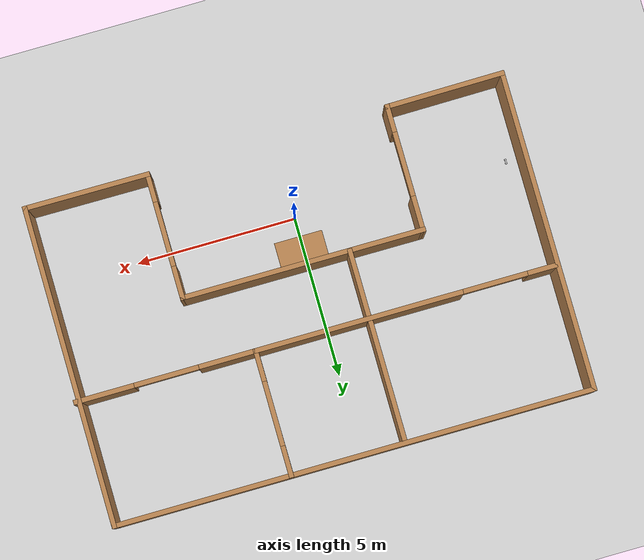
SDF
<sdf version="1.7">
 <world name="default">
  <light name="sun" type="directional">
   <pose>0 0 10 0 -0 0</pose>
   <diffuse>0.8 0.8 0.8 1</diffuse>
   <specular>0.2 0.2 0.2 1</specular>
   <attenuation>
    <range>1000</range>
    <constant>0.9</constant>
    <linear>0.01</linear>
    <quadratic>0.001</quadratic>
   </attenuation>
   <direction>-0.5 0.1 -0.9</direction>
   <spot><inner_angle>0</inner_angle><outer_angle>0</outer_angle><falloff>0</falloff></spot>
  </light>
  <model name="ground_plane">
   <static>1</static>
   <link name="link">
    <collision name="collision">
     <geometry><plane><normal>0 0 1</normal><size>100 100</size></plane></geometry>
     <surface><friction><ode><mu>100</mu><mu2>50</mu2></ode></friction></surface>
    </collision>
    <visual name="visual">
     <cast_shadows>0</cast_shadows>
     <geometry><plane><normal>0 0 1</normal><size>100 100</size></plane></geometry>
     <material>
      <script><uri>file://media/materials/scripts/gazebo.material</uri><name>Gazebo/Grey</name></script>
     </material>
    </visual>
   </link>
  </model>
  <gravity>0 0 -9.8</gravity>
  <magnetic_field>6e-06 2.3e-05 -4.2e-05</magnetic_field>
  <atmosphere type="adiabatic"/>
  <physics type="ode">
   <max_step_size>0.001</max_step_size>
   <real_time_factor>1</real_time_factor>
   <real_time_update_rate>1000</real_time_update_rate>
  </physics>
  <scene><ambient>0.4 0.4 0.4 1</ambient><background>0.7 0.7 0.7 1</background><shadows>1</shadows></scene>
  <spherical_coordinates>
   <surface_model>EARTH_WGS84</surface_model>
   <latitude_deg>0</latitude_deg>
   <longitude_deg>0</longitude_deg>
   <elevation>0</elevation>
   <heading_deg>0</heading_deg>
  </spherical_coordinates>
  <model name="tiago_5house">
   <pose>0.343172 2.62592 0 0 -0 0</pose>
   <link name="Wall_12">
    <pose>0.047716 1.06548 0 0 -0 0</pose>
    <visual name="Wall_12_Visual_0">
     <pose>-7.03783 0 1.25 0 -0 0</pose>
     <geometry><box><size>0.924333 0.15 2.5</size></box></geometry>
     <material>
      <script><uri>file://media/materials/scripts/gazebo.material</uri><name>Gazebo/Wood</name></script>
      <ambient>1 1 1 1</ambient>
     </material>
     <meta><layer>0</layer></meta>
    </visual>
    <collision name="Wall_12_Collision_0">
     <geometry><box><size>0.924333 0.15 2.5</size></box></geometry>
     <pose>-7.03783 0 1.25 0 -0 0</pose>
    </collision>
    <visual name="Wall_12_Visual_1">
     <pose>-0.474768 0 1.25 0 -0 0</pose>
     <geometry><box><size>8.2018 0.15 2.5</size></box></geometry>
     <material>
      <script><uri>file://media/materials/scripts/gazebo.material</uri><name>Gazebo/Wood</name></script>
      <ambient>1 1 1 1</ambient>
     </material>
     <meta><layer>0</layer></meta>
    </visual>
    <collision name="Wall_12_Collision_1">
     <geometry><box><size>8.2018 0.15 2.5</size></box></geometry>
     <pose>-0.474768 0 1.25 0 -0 0</pose>
    </collision>
    <visual name="Wall_12_Visual_2">
     <pose>6.56307 0 1.25 0 -0 0</pose>
     <geometry><box><size>1.87387 0.15 2.5</size></box></geometry>
     <material>
      <script><uri>file://media/materials/scripts/gazebo.material</uri><name>Gazebo/Wood</name></script>
      <ambient>1 1 1 1</ambient>
     </material>
     <meta><layer>0</layer></meta>
    </visual>
    <collision name="Wall_12_Collision_2">
     <geometry><box><size>1.87387 0.15 2.5</size></box></geometry>
     <pose>6.56307 0 1.25 0 -0 0</pose>
    </collision>
    <visual name="Wall_12_Visual_3">
     <pose>-5.57567 0 2.25 0 -0 0</pose>
     <geometry><box><size>2 0.15 0.5</size></box></geometry>
     <material>
      <script><uri>file://media/materials/scripts/gazebo.material</uri><name>Gazebo/Wood</name></script>
      <ambient>1 1 1 1</ambient>
     </material>
     <meta><layer>0</layer></meta>
    </visual>
    <collision name="Wall_12_Collision_3">
     <geometry><box><size>2 0.15 0.5</size></box></geometry>
     <pose>-5.57567 0 2.25 0 -0 0</pose>
    </collision>
    <visual name="Wall_12_Visual_4">
     <pose>4.62613 0 2.25 0 -0 0</pose>
     <geometry><box><size>2 0.15 0.5</size></box></geometry>
     <material>
      <script><uri>file://media/materials/scripts/gazebo.material</uri><name>Gazebo/Wood</name></script>
      <ambient>1 1 1 1</ambient>
     </material>
     <meta><layer>0</layer></meta>
    </visual>
    <collision name="Wall_12_Collision_4">
     <geometry><box><size>2 0.15 0.5</size></box></geometry>
     <pose>4.62613 0 2.25 0 -0 0</pose>
    </collision>
   </link>
   <link name="Wall_14">
    <collision name="Wall_14_Collision">
     <geometry><box><size>4 0.15 2.5</size></box></geometry>
     <pose>0 0 1.25 0 -0 0</pose>
    </collision>
    <visual name="Wall_14_Visual">
     <pose>0 0 1.25 0 -0 0</pose>
     <geometry><box><size>4 0.15 2.5</size></box></geometry>
     <material>
      <script><uri>file://media/materials/scripts/gazebo.material</uri><name>Gazebo/Wood</name></script>
      <ambient>1 1 1 1</ambient>
     </material>
     <meta><layer>0</layer></meta>
    </visual>
    <pose>-1.62107 2.96812 0 0 -0 -1.5708</pose>
   </link>
   <link name="Wall_16">
    <pose>1.91131 2.99115 0 0 -0 -1.5708</pose>
    <visual name="Wall_16_Visual_0">
     <pose>-1.51083 0 1.25 0 -0 0</pose>
     <geometry><box><size>0.978336 0.15 2.5</size></box></geometry>
     <material>
      <script><uri>file://media/materials/scripts/gazebo.material</uri><name>Gazebo/Wood</name></script>
      <ambient>1 1 1 1</ambient>
     </material>
     <meta><layer>0</layer></meta>
    </visual>
    <collision name="Wall_16_Collision_0">
     <geometry><box><size>0.978336 0.15 2.5</size></box></geometry>
     <pose>-1.51083 0 1.25 0 -0 0</pose>
    </collision>
    <visual name="Wall_16_Visual_1">
     <pose>1.48917 0 1.25 0 -0 0</pose>
     <geometry><box><size>1.02166 0.15 2.5</size></box></geometry>
     <material>
      <script><uri>file://media/materials/scripts/gazebo.material</uri><name>Gazebo/Wood</name></script>
      <ambient>1 1 1 1</ambient>
     </material>
     <meta><layer>0</layer></meta>
    </visual>
    <collision name="Wall_16_Collision_1">
     <geometry><box><size>1.02166 0.15 2.5</size></box></geometry>
     <pose>1.48917 0 1.25 0 -0 0</pose>
    </collision>
    <visual name="Wall_16_Visual_2">
     <pose>-0.021664 0 2.25 0 -0 0</pose>
     <geometry><box><size>2 0.15 0.5</size></box></geometry>
     <material>
      <script><uri>file://media/materials/scripts/gazebo.material</uri><name>Gazebo/Wood</name></script>
      <ambient>1 1 1 1</ambient>
     </material>
     <meta><layer>0</layer></meta>
    </visual>
    <collision name="Wall_16_Collision_2">
     <geometry><box><size>2 0.15 0.5</size></box></geometry>
     <pose>-0.021664 0 2.25 0 -0 0</pose>
    </collision>
   </link>
   <link name="Wall_18">
    <collision name="Wall_18_Collision">
     <geometry><box><size>2.25 0.15 2.5</size></box></geometry>
     <pose>0 0 1.25 0 -0 0</pose>
    </collision>
    <visual name="Wall_18_Visual">
     <pose>0 0 1.25 0 -0 0</pose>
     <geometry><box><size>2.25 0.15 2.5</size></box></geometry>
     <material>
      <script><uri>file://media/materials/scripts/gazebo.material</uri><name>Gazebo/Wood</name></script>
      <ambient>1 1 1 1</ambient>
     </material>
     <meta><layer>0</layer></meta>
    </visual>
    <pose>-1.61332 0.019267 0 0 -0 -1.5708</pose>
   </link>
   <link name="Wall_20">
    <collision name="Wall_20_Collision">
     <geometry><box><size>3.7385 0.15 2.5</size></box></geometry>
     <pose>0 0 1.25 0 -0 0</pose>
    </collision>
    <visual name="Wall_20_Visual">
     <pose>0 0 1.25 0 -0 0</pose>
     <geometry><box><size>3.7385 0.15 2.5</size></box></geometry>
     <material>
      <script><uri>file://media/materials/scripts/gazebo.material</uri><name>Gazebo/Wood</name></script>
      <ambient>1 1 1 1</ambient>
     </material>
     <meta><layer>0</layer></meta>
    </visual>
    <pose>-5.67796 -4.91139 0 0 -0 0.007434</pose>
   </link>
   <link name="Wall_22">
    <collision name="Wall_22_Collision">
     <geometry><box><size>3.95097 0.15 2.5</size></box></geometry>
     <pose>0 0 1.25 0 -0 0</pose>
    </collision>
    <visual name="Wall_22_Visual">
     <pose>0 0 1.25 0 -0 0</pose>
     <geometry><box><size>3.95097 0.15 2.5</size></box></geometry>
     <material>
      <script><uri>file://media/materials/scripts/gazebo.material</uri><name>Gazebo/Wood</name></script>
      <ambient>1 1 1 1</ambient>
     </material>
     <meta><layer>0</layer></meta>
    </visual>
    <pose>5.47737 -4.91644 0 0 -0 -0.004357</pose>
   </link>
   <link name="Wall_3">
    <collision name="Wall_3_Collision">
     <geometry><box><size>10 0.15 2.5</size></box></geometry>
     <pose>0 0 1.25 0 -0 0</pose>
    </collision>
    <visual name="Wall_3_Visual">
     <pose>0 0 1.25 0 -0 0</pose>
     <geometry><box><size>10 0.15 2.5</size></box></geometry>
     <material>
      <script><uri>file://media/materials/scripts/gazebo.material</uri><name>Gazebo/Wood</name></script>
      <ambient>1 1 1 1</ambient>
     </material>
     <meta><layer>0</layer></meta>
    </visual>
    <pose>7.37784 0.000277 0 0 -0 1.5708</pose>
   </link>
   <link name="Wall_4">
    <collision name="Wall_4_Collision">
     <geometry><box><size>15 0.15 2.5</size></box></geometry>
     <pose>0 0 1.25 0 -0 0</pose>
    </collision>
    <visual name="Wall_4_Visual">
     <pose>0 0 1.25 0 -0 0</pose>
     <geometry><box><size>15 0.15 2.5</size></box></geometry>
     <material>
      <script><uri>file://media/materials/scripts/gazebo.material</uri><name>Gazebo/Wood</name></script>
      <ambient>1 1 1 1</ambient>
     </material>
     <meta><layer>0</layer></meta>
    </visual>
    <pose>-0.04716 4.92528 0 0 -0 3.14159</pose>
   </link>
   <link name="Wall_5">
    <collision name="Wall_5_Collision">
     <geometry><box><size>10 0.15 2.5</size></box></geometry>
     <pose>0 0 1.25 0 -0 0</pose>
    </collision>
    <visual name="Wall_5_Visual">
     <pose>0 0 1.25 0 -0 0</pose>
     <geometry><box><size>10 0.15 2.5</size></box></geometry>
     <material>
      <script><uri>file://media/materials/scripts/gazebo.material</uri><name>Gazebo/Wood</name></script>
      <ambient>1 1 1 1</ambient>
     </material>
     <meta><layer>0</layer></meta>
    </visual>
    <pose>-7.47216 0.000277 0 0 -0 -1.5708</pose>
   </link>
   <link name="Wall_7">
    <pose>-3.88376 -2.97305 0 0 -0 1.5708</pose>
    <visual name="Wall_7_Visual_0">
     <pose>-1.56348 0 1.25 0 -0 0</pose>
     <geometry><box><size>0.873041 0.15 2.5</size></box></geometry>
     <material>
      <script><uri>file://media/materials/scripts/gazebo.material</uri><name>Gazebo/Wood</name></script>
      <ambient>1 1 1 1</ambient>
     </material>
     <meta><layer>0</layer></meta>
    </visual>
    <collision name="Wall_7_Collision_0">
     <geometry><box><size>0.873041 0.15 2.5</size></box></geometry>
     <pose>-1.56348 0 1.25 0 -0 0</pose>
    </collision>
    <visual name="Wall_7_Visual_1">
     <pose>1.43652 0 1.25 0 -0 0</pose>
     <geometry><box><size>1.12696 0.15 2.5</size></box></geometry>
     <material>
      <script><uri>file://media/materials/scripts/gazebo.material</uri><name>Gazebo/Wood</name></script>
      <ambient>1 1 1 1</ambient>
     </material>
     <meta><layer>0</layer></meta>
    </visual>
    <collision name="Wall_7_Collision_1">
     <geometry><box><size>1.12696 0.15 2.5</size></box></geometry>
     <pose>1.43652 0 1.25 0 -0 0</pose>
    </collision>
    <visual name="Wall_7_Visual_2">
     <pose>-0.126959 0 2.25 0 -0 0</pose>
     <geometry><box><size>2 0.15 0.5</size></box></geometry>
     <material>
      <script><uri>file://media/materials/scripts/gazebo.material</uri><name>Gazebo/Wood</name></script>
      <ambient>1 1 1 1</ambient>
     </material>
     <meta><layer>0</layer></meta>
    </visual>
    <collision name="Wall_7_Collision_2">
     <geometry><box><size>2 0.15 0.5</size></box></geometry>
     <pose>-0.126959 0 2.25 0 -0 0</pose>
    </collision>
   </link>
   <link name="Wall_8">
    <collision name="Wall_8_Collision">
     <geometry><box><size>7.61067 0.15 2.5</size></box></geometry>
     <pose>0 0 1.25 0 -0 0</pose>
    </collision>
    <visual name="Wall_8_Visual">
     <pose>0 0 1.25 0 -0 0</pose>
     <geometry><box><size>7.61067 0.15 2.5</size></box></geometry>
     <material>
      <script><uri>file://media/materials/scripts/gazebo.material</uri><name>Gazebo/Wood</name></script>
      <ambient>1 1 1 1</ambient>
     </material>
     <meta><layer>0</layer></meta>
    </visual>
    <pose>-0.163542 -1.0531 0 0 -0 -0.001356</pose>
   </link>
   <link name="Wall_9">
    <pose>3.5769 -2.98316 0 0 -0 -1.5708</pose>
    <visual name="Wall_9_Visual_0">
     <pose>-1.47042 0 1.25 0 -0 0</pose>
     <geometry><box><size>1.05917 0.15 2.5</size></box></geometry>
     <material>
      <script><uri>file://media/materials/scripts/gazebo.material</uri><name>Gazebo/Wood</name></script>
      <ambient>1 1 1 1</ambient>
     </material>
     <meta><layer>0</layer></meta>
    </visual>
    <collision name="Wall_9_Collision_0">
     <geometry><box><size>1.05917 0.15 2.5</size></box></geometry>
     <pose>-1.47042 0 1.25 0 -0 0</pose>
    </collision>
    <visual name="Wall_9_Visual_1">
     <pose>1.52958 0 1.25 0 -0 0</pose>
     <geometry><box><size>0.94083 0.15 2.5</size></box></geometry>
     <material>
      <script><uri>file://media/materials/scripts/gazebo.material</uri><name>Gazebo/Wood</name></script>
      <ambient>1 1 1 1</ambient>
     </material>
     <meta><layer>0</layer></meta>
    </visual>
    <collision name="Wall_9_Collision_1">
     <geometry><box><size>0.94083 0.15 2.5</size></box></geometry>
     <pose>1.52958 0 1.25 0 -0 0</pose>
    </collision>
    <visual name="Wall_9_Visual_2">
     <pose>0.05917 0 2.25 0 -0 0</pose>
     <geometry><box><size>2 0.15 0.5</size></box></geometry>
     <material>
      <script><uri>file://media/materials/scripts/gazebo.material</uri><name>Gazebo/Wood</name></script>
      <ambient>1 1 1 1</ambient>
     </material>
     <meta><layer>0</layer></meta>
    </visual>
    <collision name="Wall_9_Collision_2">
     <geometry><box><size>2 0.15 0.5</size></box></geometry>
     <pose>0.05917 0 2.25 0 -0 0</pose>
    </collision>
   </link>
   <static>1</static>
  </model>
  <model name="table">
   <static>1</static>
   <link name="link">
    <collision name="surface">
     <pose>0 0 1 0 -0 0</pose>
     <geometry><box><size>1.5 0.8 0.03</size></box></geometry>
     <surface><friction><ode><mu>0.6</mu><mu2>0.6</mu2></ode></friction></surface>
    </collision>
    <visual name="visual1">
     <pose>0 0 1 0 -0 0</pose>
     <geometry><box><size>1.5 0.8 0.03</size></box></geometry>
     <material>
      <script><uri>file://media/materials/scripts/gazebo.material</uri><name>Gazebo/Wood</name></script>
     </material>
    </visual>
    <collision name="front_left_leg">
     <pose>0.68 0.38 0.5 0 -0 0</pose>
     <geometry><cylinder><radius>0.02</radius><length>1</length></cylinder></geometry>
    </collision>
    <visual name="front_left_leg">
     <pose>0.68 0.38 0.5 0 -0 0</pose>
     <geometry><cylinder><radius>0.02</radius><length>1</length></cylinder></geometry>
     <material>
      <script><uri>file://media/materials/scripts/gazebo.material</uri><name>Gazebo/Grey</name></script>
     </material>
    </visual>
    <collision name="front_right_leg">
     <pose>0.68 -0.38 0.5 0 -0 0</pose>
     <geometry><cylinder><radius>0.02</radius><length>1</length></cylinder></geometry>
    </collision>
    <visual name="front_right_leg">
     <pose>0.68 -0.38 0.5 0 -0 0</pose>
     <geometry><cylinder><radius>0.02</radius><length>1</length></cylinder></geometry>
     <material>
      <script><uri>file://media/materials/scripts/gazebo.material</uri><name>Gazebo/Grey</name></script>
     </material>
    </visual>
    <collision name="back_right_leg">
     <pose>-0.68 -0.38 0.5 0 -0 0</pose>
     <geometry><cylinder><radius>0.02</radius><length>1</length></cylinder></geometry>
    </collision>
    <visual name="back_right_leg">
     <pose>-0.68 -0.38 0.5 0 -0 0</pose>
     <geometry><cylinder><radius>0.02</radius><length>1</length></cylinder></geometry>
     <material>
      <script><uri>file://media/materials/scripts/gazebo.material</uri><name>Gazebo/Grey</name></script>
     </material>
    </visual>
    <collision name="back_left_leg">
     <pose>-0.68 0.38 0.5 0 -0 0</pose>
     <geometry><cylinder><radius>0.02</radius><length>1</length></cylinder></geometry>
    </collision>
    <visual name="back_left_leg">
     <pose>-0.68 0.38 0.5 0 -0 0</pose>
     <geometry><cylinder><radius>0.02</radius><length>1</length></cylinder></geometry>
     <material>
      <script><uri>file://media/materials/scripts/gazebo.material</uri><name>Gazebo/Grey</name></script>
     </material>
    </visual>
   </link>
   <pose>0.07691 1.03238 0 0 -0 0</pose>
  </model>
  <model name="another">
   <static>0</static>
   <link name="link">
    <inertial>
     <mass>0.25</mass>
     <inertia>
      <ixx>0.00106666</ixx>
      <ixy>0</ixy>
      <ixz>0</ixz>
      <iyy>0.00106666</iyy>
      <iyz>0</iyz>
      <izz>0.00106666</izz>
     </inertia>
    </inertial>
    <collision name="colision1">
     <geometry>
      <mesh><uri>model://aruco_cube_26/meshes/aruco_cube_6cm.dae</uri><scale>1 1 1</scale></mesh>
     </geometry>
    </collision>
    <visual name="visual1">
     <geometry>
      <mesh><uri>model://aruco_cube_26/meshes/aruco_cube_6cm.dae</uri><scale>1 1 1</scale></mesh>
     </geometry>
    </visual>
    <velocity_decay><linear>0</linear><angular>0</angular></velocity_decay>
   </link>
   <pose>-6.65243 0.179243 0.689998 -3.8e-05 3.5e-05 3.6e-05</pose>
  </model>
  <model name="glass">
   <static>0</static>
   <link name="link">
    <inertial>
     <mass>0.25</mass>
     <inertia>
      <ixx>0.00106666</ixx>
      <ixy>0</ixy>
      <ixz>0</ixz>
      <iyy>0.00106666</iyy>
      <iyz>0</iyz>
      <izz>0.00106666</izz>
     </inertia>
    </inertial>
    <collision name="colision1">
     <geometry><mesh><uri>model://aruco_cube/meshes/aruco_cube_6cm.dae</uri><scale>1 1 1</scale></mesh></geometry>
    </collision>
    <visual name="visual1">
     <geometry><mesh><uri>model://aruco_cube/meshes/aruco_cube_6cm.dae</uri><scale>1 1 1</scale></mesh></geometry>
    </visual>
    <velocity_decay><linear>0</linear><angular>0</angular></velocity_decay>
   </link>
   <pose>-6.65243 0.079243 0.689998 -3.8e-05 3.5e-05 3.6e-05</pose>
  </model>
 </world>
</sdf>
